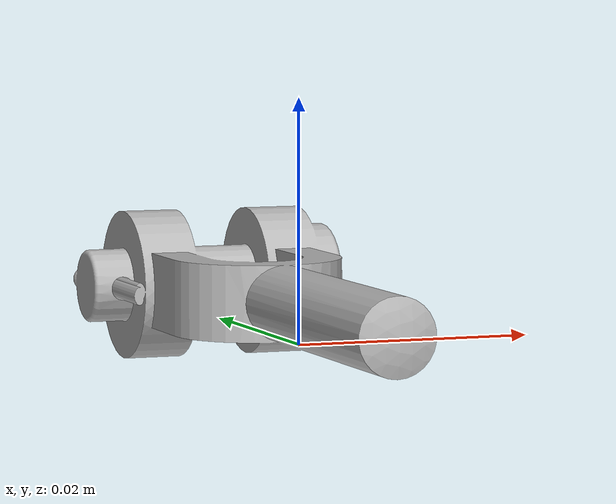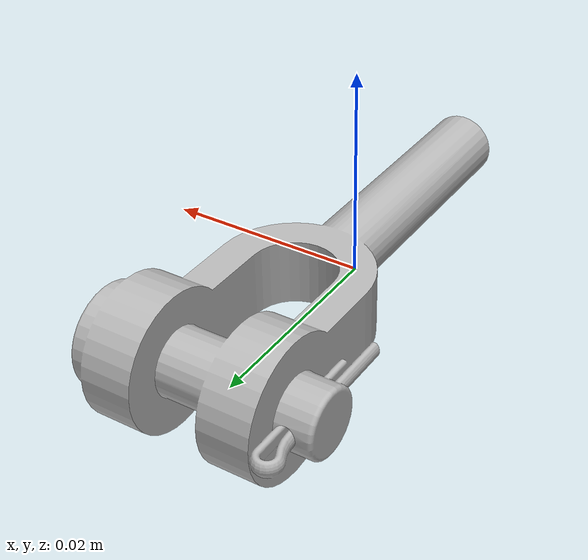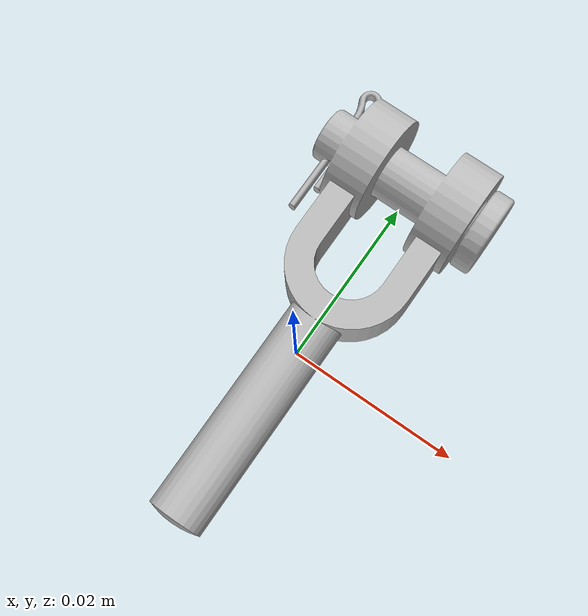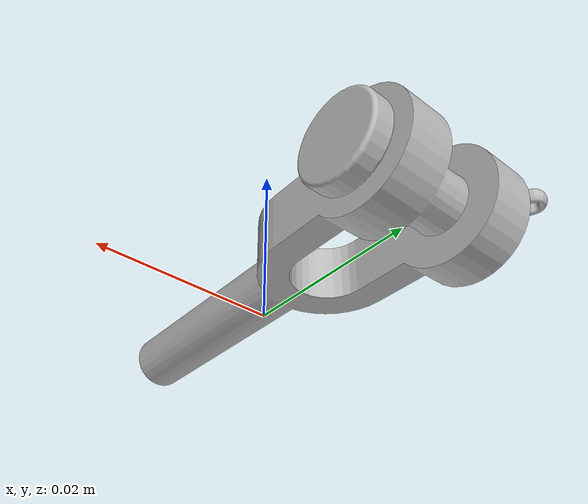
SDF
<?xml version="1.0" ?>
<sdf version="1.0">
  <model name="3d_rod_end">
    <link name="link">
      <inertial>
        <pose>0.000175176 0.011506603 0.03000504 0 0 0</pose>
        <mass>0.4</mass>
        <inertia>
          <ixx>0.0000813905968541218</ixx>
          <ixy>-0.000000765549352147596</ixy>
          <ixz>0.0000000000327225219373645</ixz>
          <iyy>0.0000128294730912106</iyy>
          <iyz>0.00000000339574878145734</iyz>
          <izz>0.0000896012706108827</izz>
        </inertia>
      </inertial>
      <collision name="collision">
        <pose>0 0 0 0 0 0</pose>
        <geometry>
          <mesh>
            <uri>model://3d_rod_end/rod_end_001.stl</uri>
          </mesh>
        </geometry>
        <surface>
          <friction>
            <ode>
              <mu>100000.0</mu>
              <mu2>100000.0</mu2>
            </ode>
          </friction>
          <contact>
            <ode>
              <kp>1000000.0</kp>
              <kd>1000000.0</kd>
              <min_depth>0.001</min_depth>
              <max_vel>0</max_vel>
            </ode>
          </contact>
        </surface>
      </collision>
      <visual name="visual">
        <pose>0 0 0 0 0 0</pose>
        <geometry>
          <mesh>
            <uri>model://3d_rod_end/rod_end_001.stl</uri>
          </mesh>
        </geometry>
      </visual>
    </link>
<static>0</static>
    <allow_auto_disable>1</allow_auto_disable>
  </model>
</sdf>
